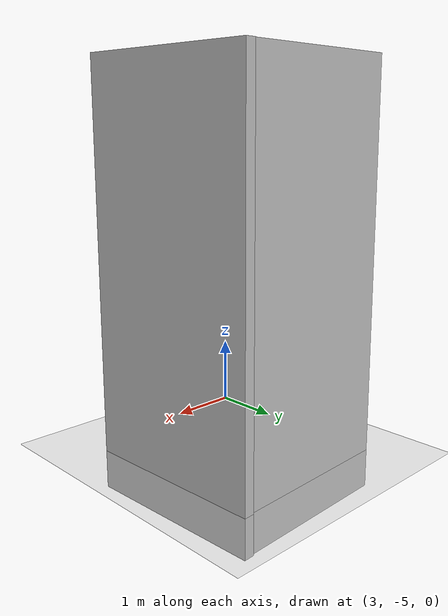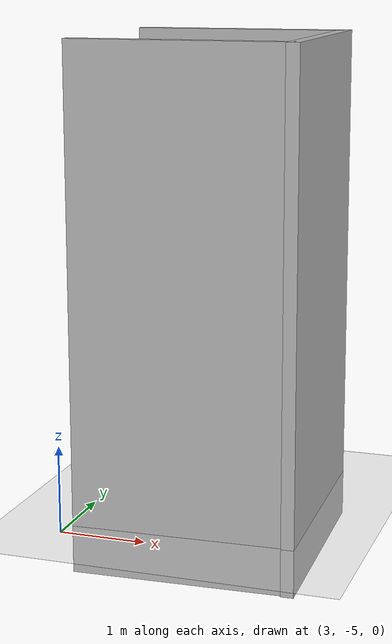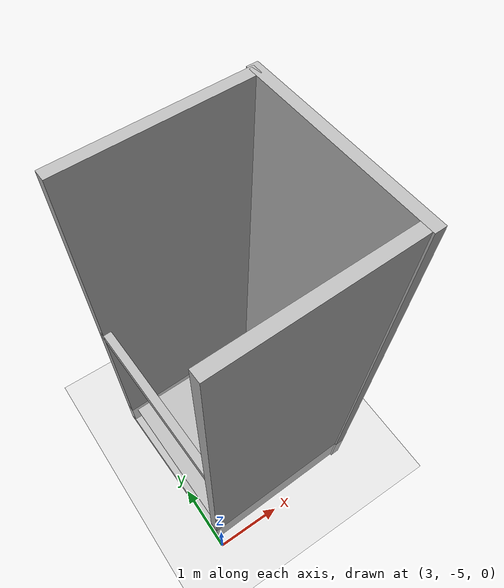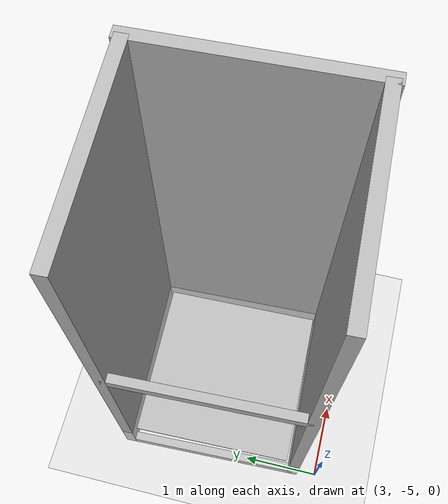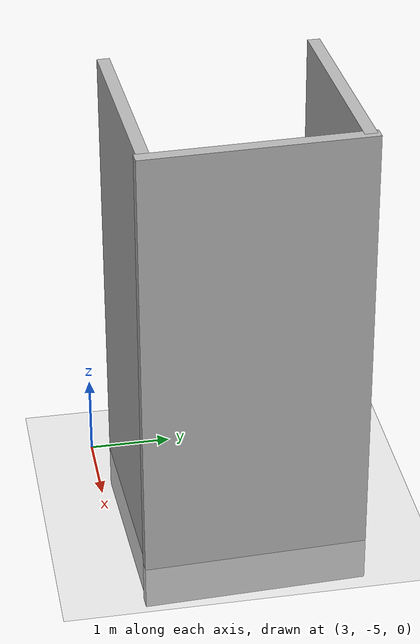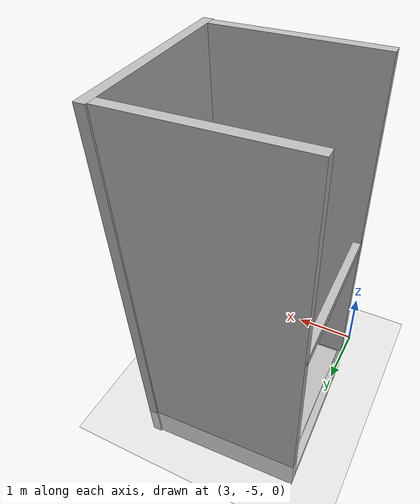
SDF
<sdf version="1.6">
 <world name="default">
  <model name="ground_plane">
   <static>1</static>
   <link name="link">
    <collision name="collision">
     <geometry><plane><normal>0 0 1</normal><size>100 100</size></plane></geometry>
     <surface>
      <contact><collide_bitmask>65535</collide_bitmask></contact>
      <friction><ode><mu>100</mu><mu2>50</mu2></ode></friction>
     </surface>
    </collision>
    <visual name="visual">
     <cast_shadows>0</cast_shadows>
     <geometry><plane><normal>0 0 1</normal><size>100 100</size></plane></geometry>
     <material>
      <script><uri>file://media/materials/scripts/gazebo.material</uri><name>Gazebo/Grey</name></script>
     </material>
    </visual>
   </link>
  </model>
  <model name="elevator_amzn_2">
   <link name="link">
    <inertial>
     <mass>800</mass>
     <inertia><ixx>1</ixx><ixy>0</ixy><ixz>0</ixz><iyy>1</iyy><iyz>0</iyz><izz>1</izz></inertia>
    </inertial>
    <visual name="floor_visual"><geometry><box><size>2.25 2.25 0.02</size></box></geometry></visual>
    <collision name="floor_collision">
     <geometry><box><size>2.25 2.25 0.02</size></box></geometry>
     <surface>
      <friction>
       <ode><mu>1</mu><mu2>1</mu2><fdir1>0 0 0</fdir1><slip1>0</slip1><slip2>0</slip2></ode>
       <torsional>
        <coefficient>1</coefficient>
        <patch_radius>0</patch_radius>
        <surface_radius>0</surface_radius>
        <use_patch_radius>1</use_patch_radius>
        <ode><slip>0</slip></ode>
       </torsional>
      </friction>
      <bounce><restitution_coefficient>0</restitution_coefficient><threshold>1e+06</threshold></bounce>
      <contact>
       <collide_without_contact>0</collide_without_contact>
       <collide_without_contact_bitmask>1</collide_without_contact_bitmask>
       <collide_bitmask>1</collide_bitmask>
       <ode>
        <soft_cfm>0</soft_cfm>
        <soft_erp>0.2</soft_erp>
        <kp>1e+13</kp>
        <kd>1</kd>
        <max_vel>0.01</max_vel>
        <min_depth>0</min_depth>
       </ode>
       <bullet>
        <split_impulse>1</split_impulse>
        <split_impulse_penetration_threshold>-0.01</split_impulse_penetration_threshold>
        <soft_cfm>0</soft_cfm>
        <soft_erp>0.2</soft_erp>
        <kp>1e+13</kp>
        <kd>1</kd>
       </bullet>
      </contact>
     </surface>
    </collision>
   </link>
   <static>0</static>
   <pose>4.1905 -3.4192 0.009713 -7e-06 -0.000255 0.027649</pose>
  </model>
  <model name="elevator_shaft">
   <link name="link">
    <visual name="shaft_wall2_visual">
     <pose>0 -1.25 3 0 -0 0</pose>
     <geometry><box><size>2.5 0.15 6</size></box></geometry>
    </visual>
    <visual name="shaft_wall3_visual">
     <pose>-1.25 0 3 0 -0 0</pose>
     <geometry><box><size>0.15 2.7 6</size></box></geometry>
    </visual>
    <visual name="floor0_visual">
     <pose>1.19 0 0.075 0 -0 0</pose>
     <geometry><box><size>0.12 2.5 0.15</size></box></geometry>
    </visual>
    <visual name="floor1_visual">
     <pose>1.19 0 3.075 0 -0 0</pose>
     <geometry><box><size>0.12 2.5 0.15</size></box></geometry>
    </visual>
    <visual name="shaft_wall1_visual">
     <pose>0 1.25 3 0 -0 0</pose>
     <geometry><box><size>2.5 0.15 6</size></box></geometry>
    </visual>
    <collision name="shaft_wall1_collision">
     <pose>0 1.25 3 0 -0 0</pose>
     <geometry><box><size>2.5 0.15 6</size></box></geometry>
     <surface>
      <friction>
       <ode><mu>1</mu><mu2>1</mu2><fdir1>0 0 0</fdir1><slip1>0</slip1><slip2>0</slip2></ode>
       <torsional>
        <coefficient>1</coefficient>
        <patch_radius>0</patch_radius>
        <surface_radius>0</surface_radius>
        <use_patch_radius>1</use_patch_radius>
        <ode><slip>0</slip></ode>
       </torsional>
      </friction>
      <bounce><restitution_coefficient>0</restitution_coefficient><threshold>1e+06</threshold></bounce>
      <contact>
       <collide_without_contact>0</collide_without_contact>
       <collide_without_contact_bitmask>1</collide_without_contact_bitmask>
       <collide_bitmask>1</collide_bitmask>
       <ode>
        <soft_cfm>0</soft_cfm>
        <soft_erp>0.2</soft_erp>
        <kp>1e+13</kp>
        <kd>1</kd>
        <max_vel>0.01</max_vel>
        <min_depth>0</min_depth>
       </ode>
       <bullet>
        <split_impulse>1</split_impulse>
        <split_impulse_penetration_threshold>-0.01</split_impulse_penetration_threshold>
        <soft_cfm>0</soft_cfm>
        <soft_erp>0.2</soft_erp>
        <kp>1e+13</kp>
        <kd>1</kd>
       </bullet>
      </contact>
     </surface>
    </collision>
    <collision name="shaft_wall2_collision">
     <pose>0 -1.25 3 0 -0 0</pose>
     <geometry><box><size>2.5 0.15 6</size></box></geometry>
     <surface>
      <friction>
       <ode><mu>1</mu><mu2>1</mu2><fdir1>0 0 0</fdir1><slip1>0</slip1><slip2>0</slip2></ode>
       <torsional>
        <coefficient>1</coefficient>
        <patch_radius>0</patch_radius>
        <surface_radius>0</surface_radius>
        <use_patch_radius>1</use_patch_radius>
        <ode><slip>0</slip></ode>
       </torsional>
      </friction>
      <bounce><restitution_coefficient>0</restitution_coefficient><threshold>1e+06</threshold></bounce>
      <contact>
       <collide_without_contact>0</collide_without_contact>
       <collide_without_contact_bitmask>1</collide_without_contact_bitmask>
       <collide_bitmask>1</collide_bitmask>
       <ode>
        <soft_cfm>0</soft_cfm>
        <soft_erp>0.2</soft_erp>
        <kp>1e+13</kp>
        <kd>1</kd>
        <max_vel>0.01</max_vel>
        <min_depth>0</min_depth>
       </ode>
       <bullet>
        <split_impulse>1</split_impulse>
        <split_impulse_penetration_threshold>-0.01</split_impulse_penetration_threshold>
        <soft_cfm>0</soft_cfm>
        <soft_erp>0.2</soft_erp>
        <kp>1e+13</kp>
        <kd>1</kd>
       </bullet>
      </contact>
     </surface>
    </collision>
    <collision name="shaft_wall3_collision">
     <pose>-1.25 0 3 0 -0 0</pose>
     <geometry><box><size>0.15 2.7 6</size></box></geometry>
     <surface>
      <friction>
       <ode><mu>1</mu><mu2>1</mu2><fdir1>0 0 0</fdir1><slip1>0</slip1><slip2>0</slip2></ode>
       <torsional>
        <coefficient>1</coefficient>
        <patch_radius>0</patch_radius>
        <surface_radius>0</surface_radius>
        <use_patch_radius>1</use_patch_radius>
        <ode><slip>0</slip></ode>
       </torsional>
      </friction>
      <bounce><restitution_coefficient>0</restitution_coefficient><threshold>1e+06</threshold></bounce>
      <contact>
       <collide_without_contact>0</collide_without_contact>
       <collide_without_contact_bitmask>1</collide_without_contact_bitmask>
       <collide_bitmask>1</collide_bitmask>
       <ode>
        <soft_cfm>0</soft_cfm>
        <soft_erp>0.2</soft_erp>
        <kp>1e+13</kp>
        <kd>1</kd>
        <max_vel>0.01</max_vel>
        <min_depth>0</min_depth>
       </ode>
       <bullet>
        <split_impulse>1</split_impulse>
        <split_impulse_penetration_threshold>-0.01</split_impulse_penetration_threshold>
        <soft_cfm>0</soft_cfm>
        <soft_erp>0.2</soft_erp>
        <kp>1e+13</kp>
        <kd>1</kd>
       </bullet>
      </contact>
     </surface>
    </collision>
    <collision name="floor0_collision">
     <pose>1.19 0 0.075 0 -0 0</pose>
     <geometry><box><size>0.12 2.5 0.15</size></box></geometry>
     <surface>
      <friction>
       <ode><mu>1</mu><mu2>1</mu2><fdir1>0 0 0</fdir1><slip1>0</slip1><slip2>0</slip2></ode>
       <torsional>
        <coefficient>1</coefficient>
        <patch_radius>0</patch_radius>
        <surface_radius>0</surface_radius>
        <use_patch_radius>1</use_patch_radius>
        <ode><slip>0</slip></ode>
       </torsional>
      </friction>
      <bounce><restitution_coefficient>0</restitution_coefficient><threshold>1e+06</threshold></bounce>
      <contact>
       <collide_without_contact>0</collide_without_contact>
       <collide_without_contact_bitmask>1</collide_without_contact_bitmask>
       <collide_bitmask>1</collide_bitmask>
       <ode>
        <soft_cfm>0</soft_cfm>
        <soft_erp>0.2</soft_erp>
        <kp>1e+13</kp>
        <kd>1</kd>
        <max_vel>0.01</max_vel>
        <min_depth>0</min_depth>
       </ode>
       <bullet>
        <split_impulse>1</split_impulse>
        <split_impulse_penetration_threshold>-0.01</split_impulse_penetration_threshold>
        <soft_cfm>0</soft_cfm>
        <soft_erp>0.2</soft_erp>
        <kp>1e+13</kp>
        <kd>1</kd>
       </bullet>
      </contact>
     </surface>
    </collision>
    <collision name="floor1_collision">
     <pose>1.19 0 3.075 0 -0 0</pose>
     <geometry><box><size>0.12 2.5 0.15</size></box></geometry>
     <surface>
      <friction>
       <ode><mu>1</mu><mu2>1</mu2><fdir1>0 0 0</fdir1><slip1>0</slip1><slip2>0</slip2></ode>
       <torsional>
        <coefficient>1</coefficient>
        <patch_radius>0</patch_radius>
        <surface_radius>0</surface_radius>
        <use_patch_radius>1</use_patch_radius>
        <ode><slip>0</slip></ode>
       </torsional>
      </friction>
      <bounce><restitution_coefficient>0</restitution_coefficient><threshold>1e+06</threshold></bounce>
      <contact>
       <collide_without_contact>0</collide_without_contact>
       <collide_without_contact_bitmask>1</collide_without_contact_bitmask>
       <collide_bitmask>1</collide_bitmask>
       <ode>
        <soft_cfm>0</soft_cfm>
        <soft_erp>0.2</soft_erp>
        <kp>1e+13</kp>
        <kd>1</kd>
        <max_vel>0.01</max_vel>
        <min_depth>0</min_depth>
       </ode>
       <bullet>
        <split_impulse>1</split_impulse>
        <split_impulse_penetration_threshold>-0.01</split_impulse_penetration_threshold>
        <soft_cfm>0</soft_cfm>
        <soft_erp>0.2</soft_erp>
        <kp>1e+13</kp>
        <kd>1</kd>
       </bullet>
      </contact>
     </surface>
    </collision>
   </link>
   <static>1</static>
   <pose>4.24493 -3.40542 -0.559123 0 0 -3.10407</pose>
  </model>
 </world>
</sdf>
